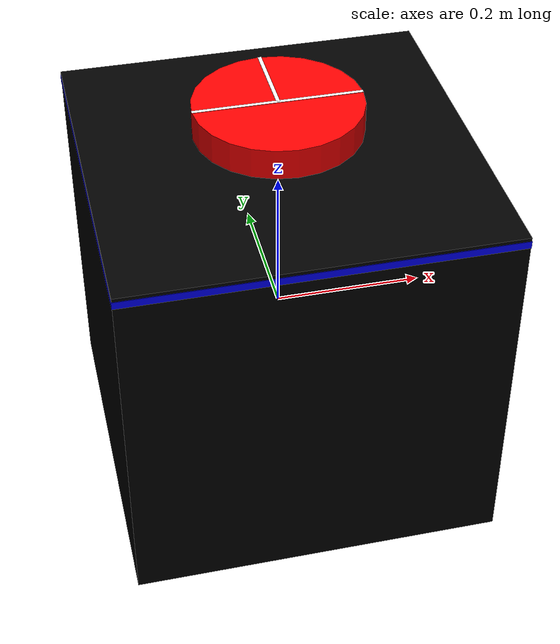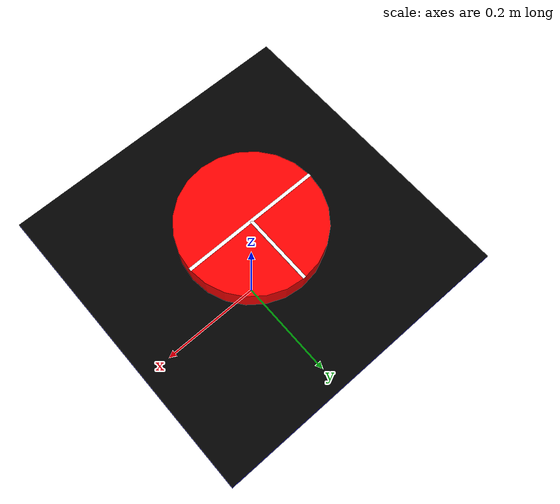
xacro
<?xml version="1.0"?>
<robot name="quanser_qube" xmlns:xacro="http://ros.org/wiki/xacro">

  <xacro:arg name="baud_rate" default="115200"/>
  <xacro:arg name="device" default="/dev/ttyUSB0"/>
  <xacro:arg name="simulation" default="false"/>

  <xacro:include filename="$(find qube_description)/urdf/qube.macro.xacro" />
  <xacro:include filename="$(find qube_driver)/ros2_control/qube_driver.ros2_control.xacro"/>

  <link name="world"/>

  <xacro:qube prefix="" parent="world"/>

  <joint name="world_to_base_joint" type="fixed">
    <parent link="world"/>
    <child link="base_link"/>
    <origin xyz="0 0 0" rpy="0 0 0"/>
  </joint>

  <xacro:qube_driver_ros2_control
    name="qube_driver"
    prefix=""
    baud_rate="$(arg baud_rate)"
    device="$(arg device)"
    simulation="$(arg simulation)"
  />

</robot>

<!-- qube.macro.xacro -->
<robot xmlns:xacro="http://www.ros.org/wiki/xacro">
  <!-- variabel definisjoner -->
  <xacro:property name="qubeWidth" value="0.5"/>
  <xacro:property name="qubeLength" value="0.5"/>
  <xacro:property name="qubeHeight" value="0.5"/>
  <xacro:property name="cylinderHeight" value="0.04"/>
  <xacro:property name="cylinderRadius" value="0.11"/>
  <xacro:property name="indicatorWidth" value="0.005"/>
  <xacro:property name="indicatorLength" value="0.22"/>
  <xacro:property name="indicatorHeight" value="0.001"/>
  <xacro:property name="sIndicatorL" value="0.11"/>
  <xacro:property name="sIndicatorW" value="0.005"/>
  <xacro:property name="sIndicatorH" value="0.001"/>
  <xacro:property name="grayCylinderH" value="0.06"/>
  <xacro:property name="grayCylinderR" value="0.05"/>
  <xacro:property name="blueLineW" value="0.501"/>
  <xacro:property name="blueLineL" value="0.501"/>
  <xacro:property name="blueLineH" value="0.01"/>

  <!-- farge variabler -->
  <material name="black">
    <color rgba="0 0 0 1"/>
  </material>
  <material name="red">
    <color rgba="1 0 0 1"/>
  </material>
  <material name="blue">
    <color rgba="0 0 1 1"/>
  </material>
  <material name="white">
    <color rgba="1 1 1 1"/>
  </material>
  <material name="gray">
    <color rgba="0.5 0.5 0.5 1"/>
  </material>

  <!-- Lager quben med bruk av variabler for lengde, bredde og høyde så koden er enklere å endre -->
  <xacro:macro name = "qube" params="prefix parent">
    <link name = "base_link">
      <visual>
        <geometry>
          <box size ="${qubeWidth} ${qubeLength} ${qubeHeight}"/>
        </geometry>
        <material name="black"/>
      </visual>
      <collision>
        <geometry>
          <box size="${qubeWidth} ${qubeLength} ${qubeHeight}"/>
        </geometry>
      </collision>
    </link>

    <!-- Lager den røde disken for quben ved å bruke sylinder variablene for å lage en lav sylinder med rød farge -->
    <link name="redDisc">
      <visual>
        <origin xyz="0 0 0" rpy="0 0 0"/>
        <geometry>
          <cylinder radius="${cylinderRadius}" length="${cylinderHeight}">
          </cylinder>
        </geometry>
        <material name="red"/>
      </visual>
      <collision>
        <geometry>
          <cylinder radius="${cylinderRadius}" length="${cylinderHeight}"/>
        </geometry>
      </collision>
    </link>

    <!-- For å gjøre figuren likere den virkelige roboten så lagde vi viserene ved å lage små bokser med så lav høyde så det ser ut som at de er malt på disken -->
    <link name="whiteIndicator">
      <visual>
        <geometry>
          <box size="${indicatorLength} ${indicatorHeight} ${indicatorWidth}"/>
        </geometry>
        <material name="white"/>
      </visual>
      <collision>
        <geometry>
          <box size="${indicatorLength}  ${indicatorHeight} ${indicatorWidth}"/>
        </geometry>
      </collision>
    </link>

    <!-- Her lagde vi den andre indikatoren med samme konsept som den forrige slik at roboten i simulatoren blir likere den virkelige roboten -->
    <link name="sIndicator">
      <visual>
        <origin xyz="${sIndicatorL/2} 0 0"/>
        <geometry>
          <box size="${sIndicatorL} ${sIndicatorH} ${sIndicatorW}"/>
        </geometry>
        <material name="white"/>
      </visual>
      <collision>
        <origin xyz="${sIndicatorL/2} 0 0"/>
        <geometry>
          <box size="${sIndicatorL} ${sIndicatorH} ${sIndicatorW}"/>
        </geometry>
      </collision>
    </link>

    <!-- Grå disk som kobler den røde disken til quben for mer detalje av den virkelige roboten -->
    <link name="grayDisc">
      <visual>
        <origin xyz="0 0 0"/>
        <geometry>
          <cylinder length="${grayCylinderH}" radius="${grayCylinderR}"/>
        </geometry>
        <material name="gray"/>
      </visual>
      <collision>
        <origin xyz="0 0 0"/>
        <geometry>
          <cylinder length="${grayCylinderH}" radius="${grayCylinderR}"/>
        </geometry>
      </collision>
    </link>

    <!-- For å legge til mer detalje for at roboten skal ligne mer på den virkelige lager vi en tynn boks som har så vidt høyere bredde og lengde verdi enn quben så den blir synlig -->
    <link name="blueLine">
      <visual>
        <origin xyz="0 0 0"/>
        <geometry>
          <box size="${blueLineW} ${blueLineL} ${blueLineH}"/>
        </geometry>
        <material name="blue"/>
      </visual>
      <collision>
        <origin xyz="0 0 0"/>
        <geometry>
          <box size="${blueLineW} ${blueLineL} ${blueLineH}"/>
        </geometry>
      </collision>
    </link>

    <!-- kobler sammen quben "base_link" sammen med den grå disken "grayDisc" -->
    <joint name="motor_joint" type="continuous">
      <parent link="base_link"/>
      <child link="grayDisc"/>
      <origin xyz="0 0 ${qubeHeight/2 + cylinderHeight/2}" rpy="0 0 0"/>
      <axis xyz="0 0 -1"/>
    </joint>

    <!-- kobler sammen de hvite indikatorene til den røde disken og bruker "fixed" så de er festet til hverandre og beholder samme stilling uansett om disken beveger seg -->
    <joint name="disc_to_indicator" type="fixed">
      <parent link="redDisc"/>
      <child link="whiteIndicator"/>
      <origin xyz="0 0 ${cylinderHeight/2}" rpy="${3.14/2} 0 0"/>
    </joint>

    <!-- kobler til indikator nummer 2 på samme måte som den første -->
    <joint name="sIndicator2disc" type="fixed">
      <parent link="redDisc"/>
      <child link="sIndicator"/>
      <origin xyz="0 0 ${cylinderHeight/2}" rpy="${3.14/2} 0 ${3.14/2}"/>
    </joint>

    <!-- kobler sammen den grå disken til den røde, og siden det er den grå disken som beveger seg vil resten bare følge og vi kan bruke "fixed" -->
    <joint name="disc_to_disc" type="fixed">
      <parent link="grayDisc"/>
      <child link="redDisc"/>
      <origin xyz="0 0 ${grayCylinderH/2}"/>
    </joint>

    <!-- kobler den blå boksen inn til quben så den ligger så vidt under og toppen av quben forblir svart -->
    <joint name="blueLineToBox" type="fixed">
      <parent link="base_link"/>
      <child link="blueLine"/>
       <origin xyz="0 0 ${qubeHeight/2 - 0.01}"/>
    </joint>

  </xacro:macro>
</robot>
